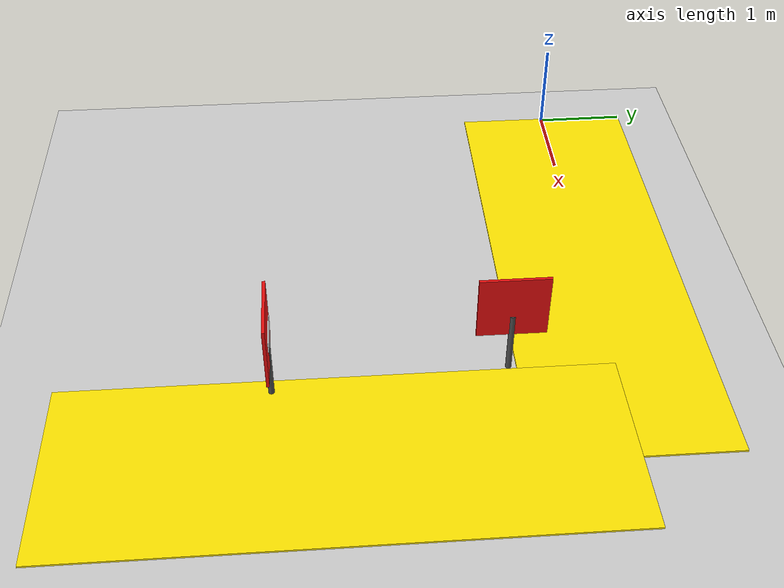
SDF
<?xml version="1.0" ?>
<sdf version="1.6">
  <world name="city_world">
    <include>
      <uri>model://sun</uri>
    </include>
    <include>
      <uri>model://ground_plane</uri>
    </include>

    <!-- Yellow road first leg: straight eastbound section -->
    <model name="yellow_lane_straight">
      <static>true</static>
      <link name="lane_link">
        <pose>2.8 0 0.01 0 0 0</pose>
        <collision name="col">
          <geometry>
            <box>
              <size>5.6 2 0.02</size>
            </box>
          </geometry>
        </collision>
        <visual name="vis">
          <geometry>
            <box>
              <size>5.6 2 0.02</size>
            </box>
          </geometry>
          <material>
            <ambient>1 0.9 0 1</ambient>
            <diffuse>1 0.9 0 1</diffuse>
          </material>
        </visual>
      </link>
    </model>

    <!-- Yellow road second leg: exact 90 degree right turn, southbound -->
    <model name="yellow_lane_after_turn">
      <static>true</static>
      <link name="lane_link">
        <pose>5.4 -2.8 0.012 0 0 0</pose>
        <collision name="col">
          <geometry>
            <box>
              <size>2 5.6 0.02</size>
            </box>
          </geometry>
        </collision>
        <visual name="vis">
          <geometry>
            <box>
              <size>2 5.6 0.02</size>
            </box>
          </geometry>
          <material>
            <ambient>1 0.9 0 1</ambient>
            <diffuse>1 0.9 0 1</diffuse>
          </material>
        </visual>
      </link>
    </model>

    <!-- Stop sign 1 beside the road before the turn, facing the incoming car -->
    <model name="stop_sign_1">
      <static>true</static>
      <pose>4.35 -1.08 0 0 0 0</pose>
      <link name="link">
        <visual name="pole_vis">
          <pose>0 0 0.35 0 0 0</pose>
          <geometry>
            <cylinder>
              <radius>0.03</radius>
              <length>0.7</length>
            </cylinder>
          </geometry>
          <material>
            <ambient>0.3 0.3 0.3 1</ambient>
            <diffuse>0.3 0.3 0.3 1</diffuse>
          </material>
        </visual>

        <visual name="sign_face">
          <pose>0 0 0.82 0 0 0</pose>
          <geometry>
            <box>
              <size>0.03 0.7 0.7</size>
            </box>
          </geometry>
          <material>
            <ambient>0.9 0.05 0.05 1</ambient>
            <diffuse>0.9 0.05 0.05 1</diffuse>
          </material>
        </visual>

        <visual name="stop_text">
          <pose>-0.025 0 0.82 0 0 0</pose>
          <geometry>
            <box>
              <size>0.01 0.38 0.12</size>
            </box>
          </geometry>
          <material>
            <ambient>1 1 1 1</ambient>
            <diffuse>1 1 1 1</diffuse>
          </material>
        </visual>
      </link>
    </model>

    <!-- Stop sign 2 beside the road after the turn, facing the incoming car -->
    <model name="stop_sign_2">
      <static>true</static>
      <pose>4.55 -3.45 0 0 0 0</pose>
      <link name="link">
        <visual name="pole_vis">
          <pose>0 0 0.35 0 0 0</pose>
          <geometry>
            <cylinder>
              <radius>0.03</radius>
              <length>0.7</length>
            </cylinder>
          </geometry>
          <material>
            <ambient>0.3 0.3 0.3 1</ambient>
            <diffuse>0.3 0.3 0.3 1</diffuse>
          </material>
        </visual>

        <visual name="sign_face">
          <pose>0 0 0.82 0 0 0</pose>
          <geometry>
            <box>
              <size>0.7 0.03 0.7</size>
            </box>
          </geometry>
          <material>
            <ambient>0.9 0.05 0.05 1</ambient>
            <diffuse>0.9 0.05 0.05 1</diffuse>
          </material>
        </visual>

        <visual name="stop_text">
          <pose>0 0.025 0.82 0 0 0</pose>
          <geometry>
            <box>
              <size>0.38 0.01 0.12</size>
            </box>
          </geometry>
          <material>
            <ambient>1 1 1 1</ambient>
            <diffuse>1 1 1 1</diffuse>
          </material>
        </visual>
      </link>
    </model>

  </world>
</sdf>
